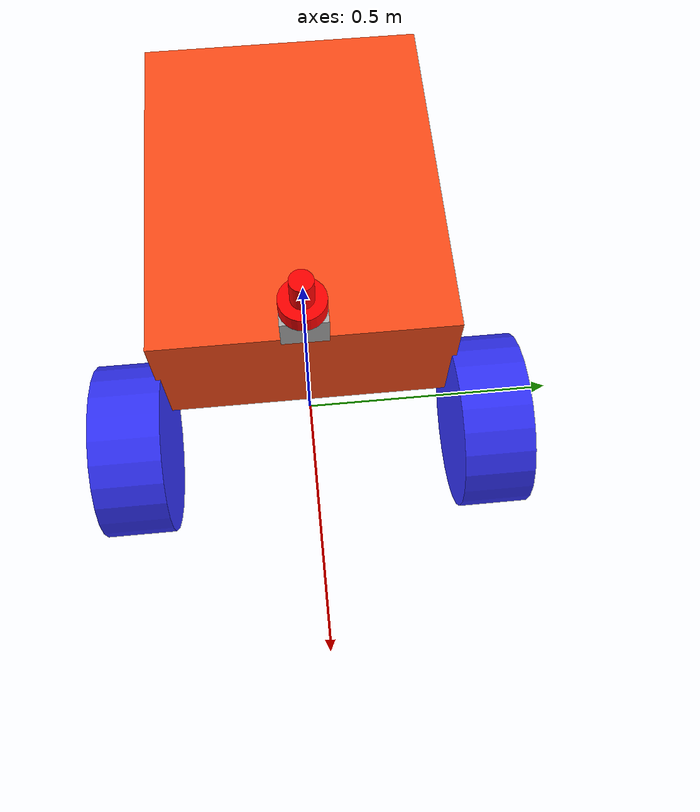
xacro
<?xml version="1.0"?>
<robot xmlns:xacro="http://www.ros.org/wiki/xacro"  name="my_bot">

    <xacro:arg name="use_ros2_control" default="true"/>
    <xacro:arg name="sim_mode" default="false"/>

    <xacro:include filename="myy_robot_core.xacro" />

    <xacro:if value="$(arg use_ros2_control)">
        <xacro:include filename="my_ros2_control.xacro" />
    </xacro:if>
    <xacro:unless value="$(arg use_ros2_control)">
        <xacro:include filename="my_gazebo_control.xacro" />
    </xacro:unless>

    <xacro:include filename="my_lidar.xacro" />
    <xacro:include filename="my_camera.xacro" />

</robot>

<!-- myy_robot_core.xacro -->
<robot xmlns:xacro="http://www.ros.org/wiki/xacro" >

    <xacro:include filename="my_inertial_macros.xacro"/>

    <xacro:property name="chassis_length" value="0.80"/>
    <xacro:property name="chassis_width" value="0.65"/>
    <xacro:property name="chassis_height" value="0.31"/>
    <xacro:property name="chassis_mass" value="45.0"/>

    <xacro:property name="wheel_radius" value="0.19"/>
    <xacro:property name="wheel_thickness" value="0.15"/>
    <xacro:property name="wheel_mass" value="3.17"/>
    <xacro:property name="wheel_offset_x" value="0"/>
    <xacro:property name="wheel_offset_y" value="0.39"/>
    <xacro:property name="wheel_offset_z" value="0.16"/>

    <xacro:property name="caster_wheel_radius" value="0.11"/>
    <xacro:property name="caster_wheel_mass" value="1.5965"/>
    <xacro:property name="caster_wheel_offset_x" value="0.91"/>
    <xacro:property name="caster_wheel_offset_y" value="0.1875"/>
    <xacro:property name="caster_wheel_offset_z" value="0.24"/>

    <!-- UBAH BAGIAN BAWAH SESUAI DENGAN UPDATE PROPERTIES -->

    <material name="white">
        <color rgba="1 1 1 1" />
    </material>

    <material name="orange">
        <color rgba="1 0.3 0.1 1"/>
    </material>

    <material name="blue">
        <color rgba="0.2 0.2 1 1"/>
    </material>

    <material name="black">
        <color rgba="0 0 0 1"/>
    </material>

    <material name="red">
        <color rgba="1 0 0 1"/>
    </material>

    <!-- BASE LINK -->
    <link name="base_link"></link>

    <!-- BASE_FOOTPRINT LINK -->
    <joint name="base_footprint_joint" type="fixed">
        <parent link="base_link"/>
        <child link="base_footprint"/>
        <origin xyz="-0.46 0 ${-wheel_radius-wheel_offset_z}" rpy="0 0 0"/>
    </joint>

    <link name="base_footprint"></link>

    <!-- CHASSIS LINK -->
    <joint name="chassis_joint" type="fixed">
        <parent link="base_link"/>
        <child link="chassis"/>
        <origin xyz="-0.085 0 ${-wheel_offset_z}"/>
    </joint>

    <link name="chassis">
        <visual>
            <origin xyz="${-chassis_length/2} 0 ${chassis_height/2}"/>
            <geometry>
                <box size="${chassis_length} ${chassis_width} ${chassis_height}"/>
            </geometry>
            <material name="orange"/>
        </visual>
        <collision>
            <origin xyz="${-chassis_length/2} 0 ${chassis_height/2}"/>
            <geometry>
                <box size="${chassis_length} ${chassis_width} ${chassis_height}"/>
            </geometry>
        </collision>

        <xacro:inertial_box mass="${chassis_mass}" x="${chassis_length}" y="${chassis_width}" z="${chassis_height}">
            <origin xyz="${-chassis_length/2} 0 ${chassis_height/2}" rpy="0 0 0"/>
        </xacro:inertial_box>
    </link>

    <gazebo reference="chassis">
        <material>Gazebo/Orange</material>
    </gazebo>

    <!-- LEFT WHEEL LINK -->
    <joint name="left_wheel_joint" type="continuous">
        <parent link="base_link"/>
        <child link="left_wheel"/>
        <origin xyz="${wheel_offset_x} ${wheel_offset_y} ${-wheel_offset_z}" rpy="${-pi/2} 0 0" />
        <axis xyz="0 0 1"/>
    </joint>

    <link name="left_wheel">
        <visual>
            <geometry>
                <cylinder radius="${wheel_radius}" length="${wheel_thickness}"/>
            </geometry>
            <material name="blue"/>
        </visual>

        <collision>
            <geometry>
                <sphere radius="${wheel_radius}"/>
            </geometry>
        </collision>

        <xacro:inertial_cylinder mass="${wheel_mass}" length="${wheel_thickness}" radius="${wheel_radius}">
            <origin xyz="0 0 0" rpy="0 0 0"/>
        </xacro:inertial_cylinder>
    </link>

    <gazebo reference="left_wheel">
        <material>Gazebo/Blue</material>
    </gazebo>

    <!-- RIGHT WHEEL LINK -->
    <joint name="right_wheel_joint" type="continuous">
        <parent link="base_link"/>
        <child link="right_wheel"/>
        <origin xyz="${wheel_offset_x} ${-wheel_offset_y} ${-wheel_offset_z}" rpy="${pi/2} 0 0" />
        <axis xyz="0 0 -1"/>
    </joint>

    <link name="right_wheel">
        <visual>
            <geometry>
                <cylinder radius="${wheel_radius}" length="${wheel_thickness}"/>
            </geometry>
            <material name="blue"/>
        </visual>

        <collision>
            <geometry>
                <sphere radius="${wheel_radius}"/>
            </geometry>
        </collision>

        <xacro:inertial_cylinder mass="${wheel_mass}" length="${wheel_thickness}" radius="${wheel_radius}">
            <origin xyz="0 0 0" rpy="0 0 0"/>
        </xacro:inertial_cylinder>
    </link>

    <gazebo reference="right_wheel">
        <material>Gazebo/Blue</material>
    </gazebo>

    <!-- CASTER WHEEL 1 LINK -->
    <joint name="caster_wheel_joint1" type="fixed">
        <parent link="base_link"/>
        <child link="caster_wheel1"/>
        <origin xyz="${-caster_wheel_offset_x} ${caster_wheel_offset_y} ${-caster_wheel_offset_z}"/>
    </joint>

    <link name="caster_wheel1">
        <visual>
            <geometry>
                <sphere radius="${caster_wheel_radius}"/>
            </geometry>
            <material name="white"/>
        </visual>
        <collision>
            <geometry>
                <sphere radius="${caster_wheel_radius}"/>
            </geometry>
        </collision>

        <xacro:inertial_sphere mass="${caster_wheel_mass}" radius="${caster_wheel_radius}">
            <origin xyz="0 0 0" rpy="0 0 0"/>
        </xacro:inertial_sphere>
    </link>

    <!-- CASTER WHEEL 2 LINK -->
    <joint name="caster_wheel_joint2" type="fixed">
        <parent link="base_link"/>
        <child link="caster_wheel2"/>
        <origin xyz="${-caster_wheel_offset_x} ${-caster_wheel_offset_y} ${-caster_wheel_offset_z}"/>
    </joint>

    <link name="caster_wheel2">
        <visual>
            <geometry>
                <sphere radius="${caster_wheel_radius}"/>
            </geometry>
            <material name="white"/>
        </visual>
        <collision>
            <geometry>
                <sphere radius="${caster_wheel_radius}"/>
            </geometry>
        </collision>

        <xacro:inertial_sphere mass="${caster_wheel_mass}" radius="${caster_wheel_radius}">
            <origin xyz="0 0 0" rpy="0 0 0"/>
        </xacro:inertial_sphere>
    </link>

    <gazebo reference="caster_wheel1">
        <material>Gazebo/White</material>
        <mu1 value="0.001"/>
        <mu2 value="0.001"/>
    </gazebo>

    <gazebo reference="caster_wheel2">
        <material>Gazebo/White</material>
        <mu1 value="0.001"/>
        <mu2 value="0.001"/>
    </gazebo>

</robot>

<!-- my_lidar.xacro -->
<robot xmlns:xacro="http://www.ros.org/wiki/xacro" >

    <material name="gray">
        <color rgba="0.7 0.7 0.7 1"/>
    </material>

    <joint name="laser_joint" type="fixed">
        <parent link="chassis"/>
        <child link="laser_frame"/>
        <origin xyz="-0.03 0 0.4" rpy="0 0 ${pi}"/>
    </joint>

    <link name="laser_frame">
        <visual>
            <geometry>
                <cylinder radius="0.05" length="0.04"/>
            </geometry>
            <material name="red"/>
        </visual>

        <visual>
            <origin xyz="0 0 0.04"/>
            <geometry>
                <cylinder radius="0.025" length="0.1"/>
            </geometry>
            <material name="red"/>
        </visual>

        <collision>
            <geometry>
                <cylinder radius="0.05" length="0.04"/>
            </geometry>
        </collision>

        <xacro:inertial_cylinder mass="0.1" length="0.14" radius="0.05">
            <origin xyz="0 0 0" rpy="0 0 0"/>
        </xacro:inertial_cylinder>
    </link>

    <gazebo reference="laser_frame">
        <material>Gazebo/Gray</material>

        <sensor name="laser" type="ray">
            <pose> 0 0 0 0 0 0 </pose>
            <visualize>true</visualize>
            <update_rate>10</update_rate>
            <ray>
                <scan>
                    <horizontal>
                        <samples>360</samples>
                        <min_angle>-3.14</min_angle>
                        <max_angle>3.14</max_angle>
                    </horizontal>
                </scan>
                <range>
                    <min>0.3</min>
                    <max>12</max>
                </range>
            </ray>
            <plugin name="laser_controller" filename="libgazebo_ros_ray_sensor.so">
                <ros>
                    <remapping>~/out:=scan</remapping>
                </ros>
                <output_type>sensor_msgs/LaserScan</output_type>
                <frame_name>laser_frame</frame_name>
            </plugin>
        </sensor>
    </gazebo>

</robot>

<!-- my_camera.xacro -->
<robot xmlns:xacro="http://www.ros.org/wiki/xacro" >

    <joint name="camera_joint" type="fixed">
        <parent link="chassis"/>
        <child link="camera_link"/>
        <origin xyz="-0.02 0 0.34" rpy="0 0 0"/>
    </joint>

    <link name="camera_link">
        <visual>
            <geometry>
                <box size="0.05 0.1 0.08"/>
            </geometry>
            <material name="gray"/>
        </visual>
    </link>

    <joint name="camera_optical_joint" type="fixed">
        <parent link="camera_link"/>
        <child link="camera_link_optical"/>
        <origin xyz="0.02 0 0" rpy="-${pi/2} 0 -${pi/2}"/>
    </joint>

    <link name="camera_link_optical"></link>

    <gazebo reference="camera_link">
        <material>Gazebo/Black</material>

        <sensor name="camera" type="camera">
            <pose> 0 0 0 0 0 0 </pose>
            <visualize>true</visualize>
            <update_rate>10</update_rate>
            <camera>
                <horizontal_fov>1.089</horizontal_fov>
                <image>
                    <format>R8G8B8</format>
                    <width>640</width>
                    <height>480</height>
                </image>
                <clip>
                    <near>0.05</near>
                    <far>20.0</far>
                </clip>
            </camera>
            <plugin name="camera_controller" filename="libgazebo_ros_camera.so">
                <ros>
                    <remapping>~/image_raw:=/camera/image_raw</remapping>
                    <remapping>~/camera_info:=/camera/camera_info</remapping>
                </ros>
                <frame_name>camera_link_optical</frame_name>
            </plugin>
        </sensor>
    </gazebo>

</robot>
